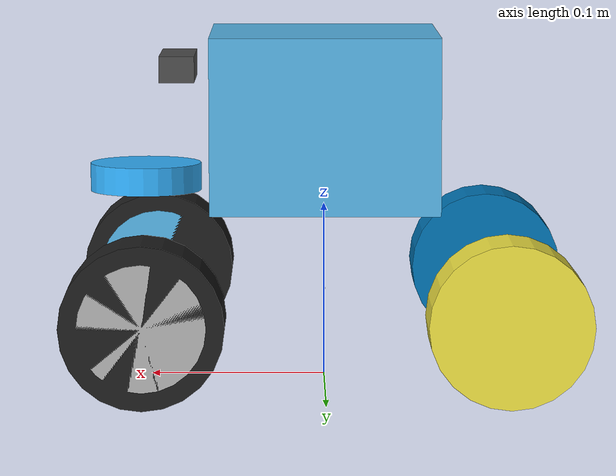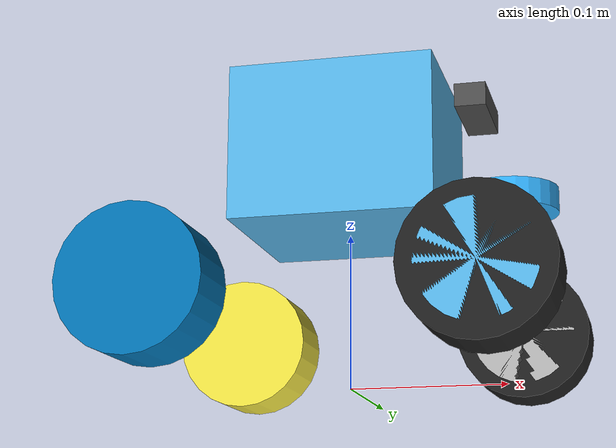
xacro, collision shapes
<?xml version="1.0"?>
<robot name="limo_ackerman" xmlns:xacro="http://ros.org/wiki/xacro">

  <!-- === Imports des sous-xacro (géométrie des capteurs + train avant) === -->
  <xacro:arg name="robot_namespace" default="/" />
  <xacro:include filename="$(find limo_description)/urdf/limo_xacro.xacro" />
  <xacro:include filename="$(find limo_description)/urdf/limo_steering_hinge.xacro" />

  <!-- === Matériaux (évite les warnings "material ... undefined") === -->
  <material name="laser_material"><color rgba="0.2 0.7 1.0 1.0"/></material>
  <material name="depth_camera_material"><color rgba="0.3 0.3 0.3 1.0"/></material>
  <material name="imu_material"><color rgba="0.9 0.5 0.1 1.0"/></material>

  <xacro:property name="M_PI" value="3.141592653589793"/>
  <xacro:property name="base_x_size" value="0.13"/>
  <xacro:property name="base_y_size" value="0.12"/>
  <xacro:property name="base_z_size" value="0.10"/>
  <xacro:property name="wheelbase" value="0.20"/>         <!-- 200 mm -->
  <xacro:property name="track" value="0.175"/>            <!-- 175 mm -->
  <xacro:property name="wheel_vertical_offset" value="-0.100998"/>
  <xacro:property name="base_mass" value="2.1557"/>

  <xacro:property name="wheel_length" value="0.045"/>
  <xacro:property name="wheel_radius" value="0.045"/>
  <xacro:property name="steering_limit" value="0.5"/>     <!-- rad -->

  <!-- === Frames de base === -->
  <link name="base_footprint"/>

  <joint name="base_joint" type="fixed">
    <parent link="base_footprint"/>
    <child  link="base_link"/>
    <origin xyz="0.0 0.0 0.15" rpy="0 0 0"/>
  </joint>

  <!-- === Châssis === -->
  <link name="base_link">
    <visual>
      <origin xyz="0 0 -0.15" rpy="0 0 1.57"/>
      <geometry>
        <mesh filename="file:///home/nochi/projet_limo_autonome/Autonomous-Vision-driven-LIMO/install/limo_description/share/limo_description/meshes/limo_base.dae" scale="1 1 1"/>
      </geometry>
    </visual>
    <collision>
      <origin xyz="0 0 0" rpy="0 0 0"/>
      <geometry>
        <box size="${base_x_size} ${base_y_size} ${base_z_size}"/>
      </geometry>
    </collision>
  </link>

  <!-- Inertie concentrée (simplifiée) -->
  <link name="inertial_link">
    <inertial>
      <origin xyz="0 0 0"/>
      <mass value="${base_mass}"/>
      <inertia ixx="0.24" ixy="0" ixz="0" iyy="0.96" iyz="0" izz="0.96"/>
    </inertial>
  </link>
  <joint name="inertial_joint" type="fixed">
    <parent link="base_link"/>
    <child  link="inertial_link"/>
    <origin xyz="0 0 0" rpy="0 0 0"/>
  </joint>

  <!-- === Capteurs (définis dans limo_xacro.xacro) === -->
  <xacro:limo_laser parent_prefix="base_link" frame_prefix="laser">
    <origin xyz="0.103 0 -0.034" rpy="0 0 0"/>
  </xacro:limo_laser>

  <xacro:limo_depth_camera parent_prefix="base_link" frame_prefix="depth_camera">
    <origin xyz="0.084 0 0.03" rpy="0 0 0"/>
  </xacro:limo_depth_camera>

  <xacro:limo_imu parent_prefix="base_link" frame_prefix="imu">
    <origin xyz="0.0 0 -0.1" rpy="0 0 0"/>
  </xacro:limo_imu>

  <xacro:limo_left_steering_hinge  parent_prefix="base_link" wheel_prefix="left_steering_hinge">
    <origin xyz="${ wheelbase/2 } ${  track/2 } ${wheel_vertical_offset}" rpy="0 0 0"/>
  </xacro:limo_left_steering_hinge>

  <xacro:limo_right_steering_hinge parent_prefix="base_link" wheel_prefix="right_steering_hinge">
    <origin xyz="${ wheelbase/2 } ${ -track/2 } ${wheel_vertical_offset}" rpy="${M_PI} 0 0"/>
  </xacro:limo_right_steering_hinge>

  <!-- === Essieu arrière (roues libres en Ackermann) === -->
  <link name="rear_left_wheel_link">
    <inertial>
      <origin xyz="0 0 0"/>
      <mass value="0.5"/>
      <inertia ixx="0.01055" ixy="0" ixz="0" iyy="0.00075" iyz="0" izz="0.01055"/>
    </inertial>
    <visual>
      <origin xyz="0 0 0" rpy="0 0 0"/>
      <geometry>
        <mesh filename="file:///home/nochi/projet_limo_autonome/Autonomous-Vision-driven-LIMO/install/limo_description/share/limo_description/meshes/limo_wheel.dae"/>
      </geometry>
    </visual>
    <collision>
      <origin xyz="0 ${wheel_length/2} 0" rpy="1.57 0 0"/>
      <geometry>
        <cylinder length="${wheel_length}" radius="${wheel_radius}"/>
      </geometry>
      <!-- Friction (SDF moderne via surface/ode) -->
      <surface>
        <friction>
          <ode>
            <mu>1.0</mu>
            <mu2>1.0</mu2>
          </ode>
        </friction>
      </surface>
    </collision>
  </link>

  <joint name="rear_left_wheel" type="continuous">
    <parent link="base_link"/>
    <child  link="rear_left_wheel_link"/>
    <origin xyz="${-wheelbase/2} ${ track/2 } ${wheel_vertical_offset}" rpy="0 0 0"/>
    <axis xyz="0 1 0"/>
    <dynamics damping="0.02"/>
  </joint>

  <link name="rear_right_wheel_link">
    <inertial>
      <origin xyz="0 0 0"/>
      <mass value="0.5"/>
      <inertia ixx="0.01055" ixy="0" ixz="0" iyy="0.00075" iyz="0" izz="0.01055"/>
    </inertial>
    <visual>
      <origin xyz="0 0 0" rpy="0 0 0"/>
      <geometry>
        <mesh filename="file:///home/nochi/projet_limo_autonome/Autonomous-Vision-driven-LIMO/install/limo_description/share/limo_description/meshes/limo_wheel.dae"/>
      </geometry>
    </visual>
    <collision>
      <origin xyz="0 ${wheel_length/2} 0" rpy="1.57 0 0"/>
      <geometry>
        <cylinder length="${wheel_length}" radius="${wheel_radius}"/>
      </geometry>
      <surface>
        <friction>
          <ode>
            <mu>1.0</mu>
            <mu2>1.0</mu2>
          </ode>
        </friction>
      </surface>
    </collision>
  </link>

  <joint name="rear_right_wheel" type="continuous">
    <parent link="base_link"/>
    <child  link="rear_right_wheel_link"/>
    <origin xyz="${-wheelbase/2} ${-track/2 } ${wheel_vertical_offset}" rpy="${M_PI} 0 0"/>
    <axis xyz="0 1 0"/>
    <dynamics damping="0.02"/>
  </joint>

  <!-- === Ajuste aussi la friction des roues AV (links créés par les xacro inclus) === -->
  <gazebo reference="front_left_wheel_link">
    <material>Gazebo/Black</material>
    <mu1>1.0</mu1>
    <mu2>1.0</mu2>
  </gazebo>
  <gazebo reference="front_right_wheel_link">
    <material>Gazebo/Black</material>
    <mu1>1.0</mu1>
    <mu2>1.0</mu2>
  </gazebo>

  <!--                 PLUGIN Ackermann (Gazebo Sim v8)                      -->
  <!--  - Traction : roues AV (front_left_wheel / front_right_wheel)         -->
  <!--  - Direction: pivots AV (left_steering_hinge_wheel / right_..._wheel) -->
  <gazebo>
    <plugin filename="gz-sim-ackermann-steering-system"
            name="gz::sim::systems::AckermannSteering">
      <!-- Joints d’entraînement (rotation des roues AV autour de Y) -->
      <left_joint>front_left_wheel</left_joint>
      <right_joint>front_right_wheel</right_joint>

      <!-- Joints de braquage (révolute autour de Z sur les porte-fusées) -->
      <left_steering_joint>left_steering_hinge_wheel</left_steering_joint>
      <right_steering_joint>right_steering_hinge_wheel</right_steering_joint>

      <!-- Paramètres géométriques réels -->
      <wheel_radius>${wheel_radius}</wheel_radius>
      <wheel_base>${wheelbase}</wheel_base>
      <wheel_separation>${track}</wheel_separation>

      <!-- Limite de braquage (rad) ≈ 0.5 rad pour ~0.4 m de rayon mini -->
      <steering_limit>${steering_limit}</steering_limit>

      <!-- Cadres de l’odométrie (utiles côté ROS via bridge) -->
      <frame_id>odom</frame_id>
      <child_frame_id>base_link</child_frame_id>

    </plugin>
  </gazebo>

</robot>

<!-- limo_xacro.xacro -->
<robot name="limo_xacro" xmlns:xacro="http://ros.org/wiki/xacro">
    <xacro:macro name="limo_wheel" params="parent_prefix wheel_prefix reflect *joint_pose">
        <link name="${wheel_prefix}_wheel_link">
            <inertial>
                <origin xyz="0 0 0" />
                <mass value="0.5" />
                <inertia ixx="0.01055" ixy="0" ixz="0" iyy="0.00075" iyz="0" izz="0.01055" />
            </inertial>
            <visual>
                <origin xyz="0 0 0" rpy="0 0 0" />
                <geometry>
                    <mesh filename="package://limo_description/meshes/limo_wheel.dae" />
                </geometry>
            </visual>
            <collision>
              <origin xyz="0 ${wheel_length/2} 0" rpy="1.57 0 0" />
              <geometry>
                  <cylinder length="${wheel_length}" radius="${wheel_radius}" />
              </geometry>
            </collision>
        </link>

        <joint name="${wheel_prefix}_wheel" type="continuous">
            <parent link="${parent_prefix}"/>
            <child link="${wheel_prefix}_wheel_link"/>
            <xacro:insert_block name="joint_pose"/>
            <axis xyz="0 ${reflect*1} 0"/>
        </joint>
    </xacro:macro>

    <xacro:macro name="limo_laser" params="parent_prefix frame_prefix *joint_pose">
        <link name='${frame_prefix}_link'>
            <pose>0 0 0 0 0 0</pose>
            <inertial>
                <mass value="0.1"/>
                <origin xyz="0.0 0 0" rpy="0 0 0"/>
                <inertia
                    ixx="1e-6" ixy="0" ixz="0"
                    iyy="1e-6" iyz="0"
                    izz="1e-6"
                />
            </inertial>
            <visual name='laser_visual'>
                <origin xyz="0 0 0" rpy="0 0 0"/>
                <geometry>
                    <cylinder radius="0.02" length="0.01"/>
                </geometry>
                <material name='laser_material'>
                    <ambient>0.1 0.1 0.1 1</ambient>
                    <diffuse>0.1 0.1 0.2 1</diffuse>
                    <specular>0 0 0 0</specular>
                    <emissive>0 0 0 1</emissive>
                </material>
            </visual>
            <collision name='laser_collision'>
                <origin xyz="0 0 0" rpy="0 0 0"/>
                <geometry>
                    <cylinder radius="0.032" length="0.016"/>
                </geometry>
            </collision>
        </link>
        <joint type="fixed" name="laser_joint">
            <xacro:insert_block name="joint_pose"/>
            <child link="${frame_prefix}_link"/>
            <parent link="${parent_prefix}"/>
        </joint>
        <gazebo reference="${frame_prefix}_link">
            <material>Gazebo/Yellow</material>
        </gazebo>
    </xacro:macro>

    <xacro:macro name="limo_depth_camera" params="parent_prefix frame_prefix *joint_pose">
        <link name='${frame_prefix}_link'>
            <pose>0 0 0 0 0 0</pose>
            <inertial>
                <mass value="0.1"/>
                <origin xyz="0.0 0 0" rpy="0 0 0"/>
                <inertia
                    ixx="1e-6" ixy="0" ixz="0"
                    iyy="1e-6" iyz="0"
                    izz="1e-6"
                />
            </inertial>
            <visual name='depth_camera_visual'>
                <origin xyz="0 0 0" rpy="0 0 0"/>
                <geometry>
                    <box size="0.02 0.06 0.015"/>
                </geometry>
                <material name='depth_camera_material'>
                    <ambient>0.1 0.1 0.1 1</ambient>
                    <diffuse>0.1 0.1 0.2 1</diffuse>
                    <specular>0 0 0 0</specular>
                    <emissive>0 0 0 1</emissive>
                </material>
            </visual>
            <collision name='depth_camera_collision'>
                <origin xyz="0 0 0" rpy="0 0 0"/>
                <geometry>
                    <box size="0.02 0.06 0.015"/>
                </geometry>
            </collision>
        </link>

        <joint type="fixed" name="depth_camera_joint">
            <xacro:insert_block name="joint_pose"/>
            <child link="${frame_prefix}_link"/>
            <parent link="${parent_prefix}"/>
        </joint>
        <link name="depth_link"></link>

        <joint name="${frame_prefix}_to_camera_joint" type="fixed">
            <origin xyz="0 0 0" rpy="${-M_PI/2} 0 ${-M_PI/2} "/>
            <parent link="${frame_prefix}_link"/>
            <child link="depth_link"/>
          </joint>

        <gazebo reference="${frame_prefix}_link">
            <material>Gazebo/Yellow</material>
        </gazebo>
    </xacro:macro>

    <xacro:macro name="limo_imu" params="parent_prefix frame_prefix  *joint_pose">
        <link name='${frame_prefix}_link'>
            <pose>0 0 0 0 0 0</pose>
            <inertial>
                <mass value="0.01"/>
                <origin xyz="0.0 0 0" rpy="0 0 0"/>
                <inertia
                    ixx="1e-7" ixy="0" ixz="0"
                    iyy="1e-7" iyz="0"
                    izz="1e-7"
                />
            </inertial>
            <visual name='imu_visual'>
                <origin xyz="0 0 0" rpy="0 0 0"/>
                <geometry>
                    <box size="0.001 0.001 0.001"/>
                </geometry>
                <material name='imu_material'>
                    <ambient>0.1 0.1 0.1 1</ambient>
                    <diffuse>0.1 0.1 0.2 1</diffuse>
                    <specular>0 0 0 0</specular>
                    <emissive>0 0 0 1</emissive>
                </material>
            </visual>
            <collision name='imu_collision'>
                <origin xyz="0 0 0" rpy="0 0 0"/>
                <geometry>
                    <box size="0.001 0.001 0.001"/>
                </geometry>
            </collision>
        </link>
        <joint type="fixed" name="imu_joint">
            <xacro:insert_block name="joint_pose"/>
            <child link="${frame_prefix}_link"/>
            <parent link="${parent_prefix}"/>
        </joint>
        <gazebo reference="${frame_prefix}_link">
            <material>Gazebo/Yellow</material>
        </gazebo>
    </xacro:macro>
</robot>

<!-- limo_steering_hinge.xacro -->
<robot name="limo_steering_hinge" xmlns:xacro="http://ros.org/wiki/xacro">

    <xacro:macro name="limo_left_steering_hinge" params="parent_prefix wheel_prefix *joint_pose">
        <link name="${wheel_prefix}">
            <inertial>
              <mass value="0.25" />
              <inertia ixx="0.00525" ixy="0" ixz="0" iyy="0.00035" iyz="0" izz="0.00525" />
              <origin xyz="0 0 0" />

            </inertial>
            <visual>
                <origin xyz="0 0 0" rpy="0 0 0" />
                <geometry>
                  <cylinder length="0.0001" radius="0.0001" />
                </geometry>
            </visual>
            <collision>
              <origin xyz="0 ${wheel_length/2} 0" rpy="1.57 0 0" />
              <geometry>
                  <cylinder length="${wheel_length}" radius="${wheel_radius-0.01}" />
              </geometry>
            </collision>
        </link>

        <joint name="${wheel_prefix}_wheel" type="revolute">
            <parent link="${parent_prefix}"/>
            <child link="${wheel_prefix}"/>
            <xacro:insert_block name="joint_pose"/>
            <axis xyz="0 0 1" />
            <limit lower="-0.523598767" upper="0.523598767" effort="5" velocity="0.5" />
            <dynamics damping="1.0" friction="2.0"/>

        </joint>

        <link name="front_left_wheel_link">
          <inertial>
            <mass value="0.25" />
            <inertia ixx="0.00525" ixy="0" ixz="0" iyy="0.00035" iyz="0" izz="0.00525" />
            <origin xyz="0 0 0" />

          </inertial>
          <visual>
              <origin xyz="0 0 0" rpy="0 0 0" />
              <geometry>
                  <mesh filename="package://limo_description/meshes/limo_wheel.dae" />
              </geometry>
          </visual>
          <collision>
            <origin xyz="0 ${wheel_length/2} 0" rpy="1.57 0 0" />
            <geometry>
                <cylinder length="${wheel_length}" radius="${wheel_radius}" />
            </geometry>
          </collision>
      </link>

      <joint name="front_left_wheel" type="continuous">
          <parent link="${wheel_prefix}"/>
          <child link="front_left_wheel_link"/>
          <origin xyz="0 0 0" rpy="0 0  0" />
          <axis xyz="0 1 0"/>
      </joint>
    </xacro:macro>

    <xacro:macro name="limo_right_steering_hinge" params="parent_prefix wheel_prefix *joint_pose">
        <link name="${wheel_prefix}">
          <inertial>
            <mass value="0.25" />
            <inertia ixx="0.00525" ixy="0" ixz="0" iyy="0.00035" iyz="0" izz="0.00525" />
            <origin xyz="0 0 0" />

          </inertial>
            <visual>
                <origin xyz="0 0 0" rpy="0 0 0" />
                <geometry>
                  <cylinder length="0.0001" radius="0.0001" />
                </geometry>
            </visual>
            <collision>
              <origin xyz="0 ${wheel_length/2} 0" rpy="1.57 0 0" />
              <geometry>
                  <cylinder length="${wheel_length}" radius="${wheel_radius-0.01}" />
              </geometry>
            </collision>
        </link>

        <joint name="${wheel_prefix}_wheel" type="revolute">
            <parent link="${parent_prefix}"/>
            <child link="${wheel_prefix}"/>
            <xacro:insert_block name="joint_pose"/>
            <axis xyz="0 0 -1"/>
            <limit lower="-0.523598767" upper="0.523598767" effort="5" velocity="0.5" />
            <dynamics damping="1.0" friction="2.0"/>
        </joint>

        <link name="front_right_wheel_link">
          <inertial>
            <mass value="0.25" />
            <inertia ixx="0.00525" ixy="0" ixz="0" iyy="0.00035" iyz="0" izz="0.00525" />
            <origin xyz="0 0 0" />
          </inertial>
          <visual>
              <origin xyz="0 0 0" rpy="0 0 0" />
              <geometry>
                  <mesh filename="package://limo_description/meshes/limo_wheel.dae" />
              </geometry>
          </visual>
          <collision>
            <origin xyz="0 ${wheel_length/2} 0" rpy="1.57 0 0" />
            <geometry>
                <cylinder length="${wheel_length}" radius="${wheel_radius}" />
            </geometry>
          </collision>
      </link>

      <joint name="front_right_wheel" type="continuous">
          <parent link="${wheel_prefix}"/>
          <child link="front_right_wheel_link"/>
          <origin xyz="0 0 0" rpy="0 0  0" />
          <axis xyz="0 -1 0"/>
      </joint>
    </xacro:macro>
</robot>
